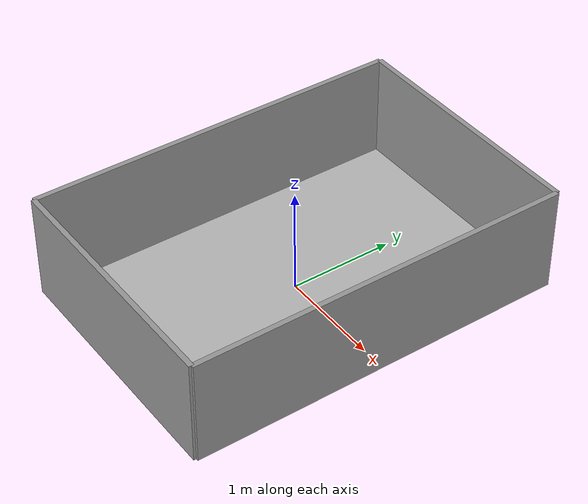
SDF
<sdf version="1.7">
 <world name="Tutorial_world">
  <light name="sun" type="directional">
   <pose>0 0 10 0 -0 0</pose>
   <diffuse>0.8 0.8 0.8 1</diffuse>
   <specular>0.2 0.2 0.2 1</specular>
   <attenuation>
    <range>1000</range>
    <constant>0.9</constant>
    <linear>0.01</linear>
    <quadratic>0.001</quadratic>
   </attenuation>
   <direction>-0.5 0.1 -0.9</direction>
   <spot><inner_angle>0</inner_angle><outer_angle>0</outer_angle><falloff>0</falloff></spot>
  </light>
  <model name="ground_plane">
   <static>1</static>
   <link name="link">
    <collision name="collision">
     <geometry><plane><normal>0 0 1</normal><size>100 100</size></plane></geometry>
     <surface>
      <contact><collide_bitmask>65535</collide_bitmask></contact>
      <friction><ode><mu>100</mu><mu2>50</mu2></ode></friction>
     </surface>
    </collision>
    <visual name="visual">
     <cast_shadows>0</cast_shadows>
     <geometry><box><size>2.4416666666666664 3.6416666666666666 .01</size></box></geometry>
     <material>
      <script>
       <uri>/home/dongyanqi/catkin_ws/src/simulator_gazebo/materials/scripts/Tutorial_region_map.material</uri>
       <name>GroundPlane/Image/Tutorial</name>
      </script>
     </material>
    </visual>
   </link>
  </model>
  <gravity>0 0 -9.8</gravity>
  <magnetic_field>6e-06 2.3e-05 -4.2e-05</magnetic_field>
  <atmosphere type="adiabatic"/>
  <physics type="ode">
   <max_step_size>0.001</max_step_size>
   <real_time_factor>1</real_time_factor>
   <real_time_update_rate>1000</real_time_update_rate>
  </physics>
  <scene><ambient>0.4 0.4 0.4 1</ambient><background>0.7 0.7 0.7 1</background><shadows>1</shadows></scene>
  <spherical_coordinates>
   <surface_model>EARTH_WGS84</surface_model>
   <latitude_deg>0</latitude_deg>
   <longitude_deg>0</longitude_deg>
   <elevation>0</elevation>
   <heading_deg>0</heading_deg>
  </spherical_coordinates>
  <model name="Boundary_0">
   <pose>0.006145704906311722 -1.8030192124071078 0 0 -0 0</pose>
   <link name="Boundary_0_link">
    <collision name="Boundary_0_Collision">
     <pose>0 0 0.5 0 -0 0</pose>
     <geometry><box><size>2.4336931774563615 0.05 1</size></box></geometry>
    </collision>
    <visual name="Boundary_0_Visual">
     <pose>0 0 0.5 0 -0 0</pose>
     <geometry><box><size>2.4336931774563615 0.05 1</size></box></geometry>
     <material>
      <script><uri>file://media/materials/scripts/gazebo.material</uri><name>Gazebo/Grey</name></script>
      <ambient>1 1 1 1</ambient>
     </material>
     <meta><layer>0</layer></meta>
    </visual>
    <inertial>
     <inertia><ixx>1</ixx><ixy>0</ixy><ixz>0</ixz><iyy>1</iyy><iyz>0</iyz><izz>1</izz></inertia>
     <mass>1</mass>
    </inertial>
   </link>
  </model>
  <model name="Boundary_1">
   <pose>1.2229922936344926 0.005172528207893046 0 0 -0 0</pose>
   <link name="Boundary_1_link">
    <collision name="Boundary_1_Collision">
     <pose>0 0 0.5 0 -0 0</pose>
     <geometry><box><size>0.05 3.6163834812300015 1</size></box></geometry>
    </collision>
    <visual name="Boundary_1_Visual">
     <pose>0 0 0.5 0 -0 0</pose>
     <geometry><box><size>0.05 3.6163834812300015 1</size></box></geometry>
     <material>
      <script><uri>file://media/materials/scripts/gazebo.material</uri><name>Gazebo/Grey</name></script>
      <ambient>1 1 1 1</ambient>
     </material>
     <meta><layer>0</layer></meta>
    </visual>
    <inertial>
     <inertia><ixx>1</ixx><ixy>0</ixy><ixz>0</ixz><iyy>1</iyy><iyz>0</iyz><izz>1</izz></inertia>
     <mass>1</mass>
    </inertial>
   </link>
  </model>
  <model name="Boundary_2">
   <pose>0.006145704906311722 1.813364268822894 0 0 -0 0</pose>
   <link name="Boundary_2_link">
    <collision name="Boundary_2_Collision">
     <pose>0 0 0.5 0 -0 0</pose>
     <geometry><box><size>2.4336931774563615 0.05 1</size></box></geometry>
    </collision>
    <visual name="Boundary_2_Visual">
     <pose>0 0 0.5 0 -0 0</pose>
     <geometry><box><size>2.4336931774563615 0.05 1</size></box></geometry>
     <material>
      <script><uri>file://media/materials/scripts/gazebo.material</uri><name>Gazebo/Grey</name></script>
      <ambient>1 1 1 1</ambient>
     </material>
     <meta><layer>0</layer></meta>
    </visual>
    <inertial>
     <inertia><ixx>1</ixx><ixy>0</ixy><ixz>0</ixz><iyy>1</iyy><iyz>0</iyz><izz>1</izz></inertia>
     <mass>1</mass>
    </inertial>
   </link>
  </model>
  <model name="Boundary_3">
   <pose>-1.2107008838218691 0.005172528207893046 0 0 -0 0</pose>
   <link name="Boundary_3_link">
    <collision name="Boundary_3_Collision">
     <pose>0 0 0.5 0 -0 0</pose>
     <geometry><box><size>0.05 3.6163834812300015 1</size></box></geometry>
    </collision>
    <visual name="Boundary_3_Visual">
     <pose>0 0 0.5 0 -0 0</pose>
     <geometry><box><size>0.05 3.6163834812300015 1</size></box></geometry>
     <material>
      <script><uri>file://media/materials/scripts/gazebo.material</uri><name>Gazebo/Grey</name></script>
      <ambient>1 1 1 1</ambient>
     </material>
     <meta><layer>0</layer></meta>
    </visual>
    <inertial>
     <inertia><ixx>1</ixx><ixy>0</ixy><ixz>0</ixz><iyy>1</iyy><iyz>0</iyz><izz>1</izz></inertia>
     <mass>1</mass>
    </inertial>
   </link>
  </model>
 </world>
</sdf>
